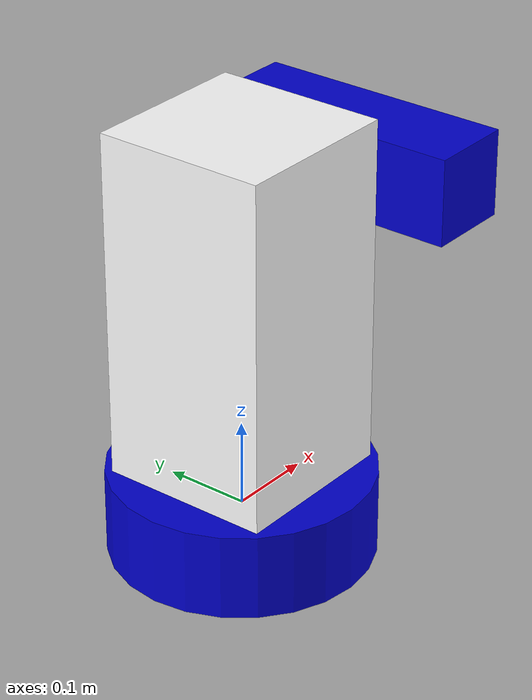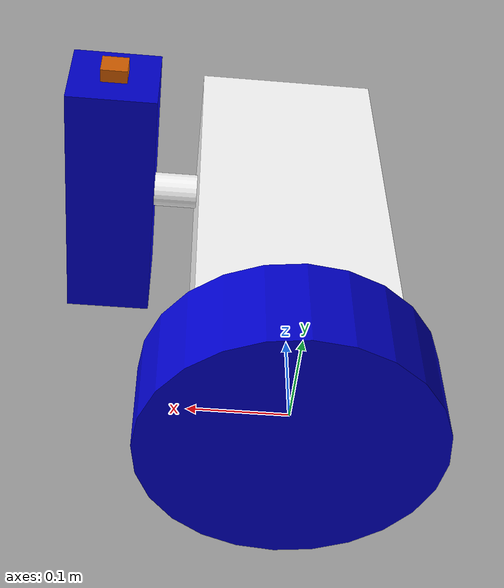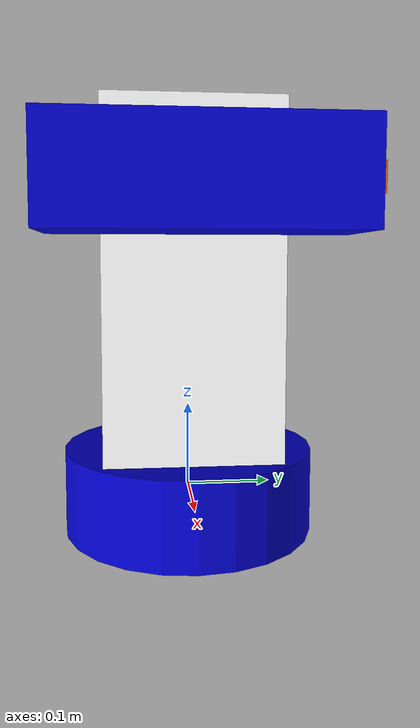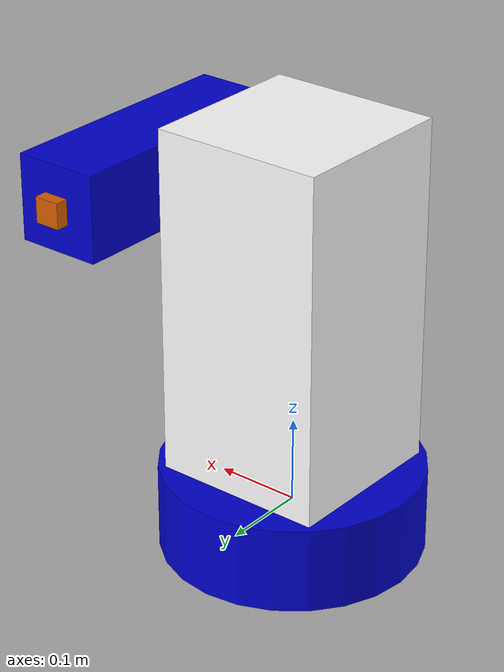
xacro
<?xml version="1.0"?>
<robot xmlns:xacro="http://www.ros.org/wiki/xacro" name="simple_robot">

<!-- Here we define the model parameters  -->

<!-- Geometry  -->

<xacro:property name="base_link_length" value="0.5"/>
<xacro:property name="base_link_radius" value="0.4"/>

<!-- Include the Gazebo definitions  -->

<xacro:include filename="$(find gazebo_ptz)/model/robot.gazebo" />

  <material name="blue">
    <color rgba="0 0 0.8 1"/>
  </material>
  <material name="black">
    <color rgba="0 0 0 1"/>
  </material>
  <material name="white">
    <color rgba="1 1 1 1"/>
  </material>

  <link name="base_link">
    <visual>
      <geometry>
        <cylinder length="0.1" radius="0.15"/>
      </geometry>
      <material name="blue"/>
    </visual>
    <collision>
      <geometry>
        <cylinder length="0.1" radius="0.15"/>
      </geometry>
    </collision>
    <inertial>
      <mass value="0.5"/>
      <inertia ixx="0.00322" ixy="0.0" ixz="0.0" iyy="0.00322" iyz="0.0" izz="0.005625"/>
    </inertial>

  </link>

  <link name="head">
    <visual>
      <geometry>
        <box size="0.2 0.2 0.4"/>
      </geometry>
      <material name="white"/>
    </visual>
    <collision>
      <geometry>
        <box size="0.2 0.2 0.4"/>
      </geometry>
    </collision>
    <inertial>
      <mass value="1"/>
      <inertia ixx="0.01666" ixy="0.0" ixz="0.0" iyy="0.01666" iyz="0.0" izz="0.00666"/>
    </inertial>
  </link>

  <joint name="pan" type="continuous">
    <parent link="base_link"/>
    <child link="head"/>
    <axis xyz="0 0 1"/>
    <origin xyz="0 0 0.25"/>
  </joint>

  <link name="tilt_support">
    <visual>
      <geometry>
        <cylinder length="0.05" radius="0.02"/>
      </geometry>
      <material name="white"/>
    </visual>
    <collision>
      <geometry>
        <cylinder length="0.05" radius="0.02"/>
      </geometry>
    </collision>
    <inertial>
      <mass value="0.25"/>
      <inertia ixx="0.00008" ixy="0.0" ixz="0.0" iyy="0.00008" iyz="0.0" izz="0.00005"/>
    </inertial>
  </link>

  <joint name="tilt" type="continuous">
    <parent link="head"/>
    <child link="tilt_support"/>
    <axis xyz="0 0 1"/>
    <origin xyz="0.125 0 0.1" rpy="0 1.5708 0"/>
  </joint>

  <link name="camera_box">
    <visual>
      <geometry>
        <box size="0.1 0.3 0.1"/>
      </geometry>
      <material name="blue"/>
    </visual>
    <collision>
      <geometry>
        <box size="0.1 0.3 0.1"/>
      </geometry>
    </collision>
    <inertial>
      <mass value="0.8"/>
      <inertia ixx="0.00533" ixy="0.0" ixz="0.0" iyy="0.00533" iyz="0.0" izz="0.01333"/>
    </inertial>
  </link>

  <joint name="tilt_support__camera_box" type="fixed">
    <parent link="tilt_support"/>
    <child link="camera_box"/>
    <origin xyz="0 0 0.075"/>
  </joint>

  <link name="camera_link">
    <visual>
      <geometry>
        <box size="0.03 0.03 0.03"/>
      </geometry>
    </visual>
    <collision>
      <geometry>
        <box size="0.03 0.03 0.03"/>
      </geometry>
    </collision>
  </link>

  <joint name="camera_box__camera_link" type="fixed">
    <parent link="camera_box"/>
    <child link="camera_link"/>
    <origin xyz="0 0.15 0" rpy="-1.5708 0 -1.5708"/>
  </joint>

</robot>

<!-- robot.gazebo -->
<robot xmlns:xacro="http://www.ros.org/wiki/xacro">
    <gazebo reference="base_link">
        <material>Gazebo/Green</material>
		<mu1>0.2</mu1>
        <mu2>0.2</mu2>
    </gazebo>

    <gazebo reference="head">
        <material>Gazebo/Blue</material>
    </gazebo>

    <gazebo reference="camera_box">
        <material>Gazebo/Orange</material>
    </gazebo>

    <gazebo reference="camera_link">
        <material>Gazebo/W</material>
    </gazebo>

	<gazebo>
        <plugin name="gazebo_ros_joint_state_publisher"
            filename="libgazebo_ros_joint_state_publisher.so">
            <update_rate>20</update_rate>
            <joint_name>pan</joint_name>
            <joint_name>tilt</joint_name>
        </plugin>
    </gazebo>

	<gazebo>
        <plugin name="gazebo_ros_joint_pose_trajectory"
            filename="libgazebo_ros_joint_pose_trajectory.so">
            <update_rate>2</update_rate>
        </plugin>
    </gazebo>

    <joint name="camera_optical_joint" type="fixed">
        <origin xyz="0 0 0" rpy="-1.5708 0 -1.5708"/>
        <parent link="camera_link" />
        <child link="camera_link_optical" />
    </joint>

    <link name="camera_link_optical"></link>

     <gazebo reference="camera_link">
        <sensor type="camera" name="my_camera">
            <update_rate>20</update_rate>
            <visualize>true</visualize>
            <camera name="cam">
                <horizontal_fov>1.3962634</horizontal_fov>
                <image>
                    <width>1920</width>
                    <height>1080</height>
                    <format>R8B8G8</format>
                </image>
                <clip>
                    <near>0.02</near>
                    <far>300</far>
                </clip>
                <noise>
                    <type>gaussian</type>
                    <mean>0.0</mean>
                    <stddev>0.007</stddev>
                </noise>
            </camera>
            <plugin name="camera_controller" filename="libgazebo_ros_camera.so">
                <frame_name>camera_link_optical</frame_name>
                <min_depth>0.1</min_depth>
                <max_depth>500</max_depth>
            </plugin>
        </sensor>
    </gazebo>
</robot>
